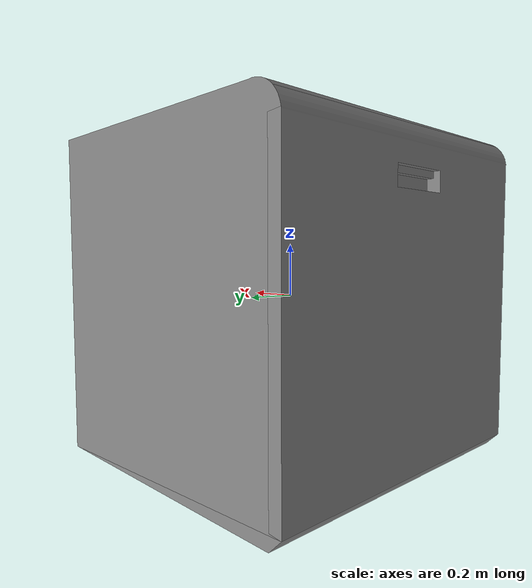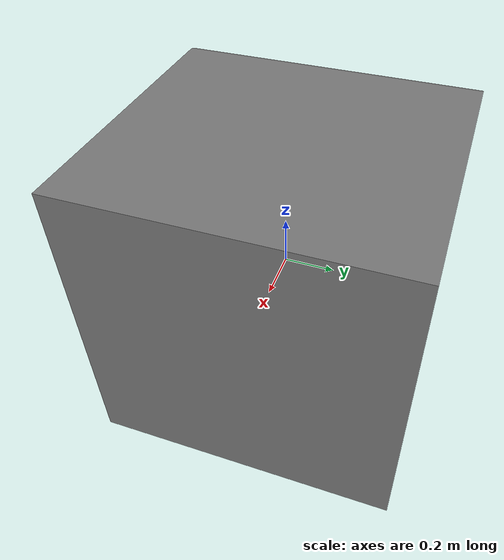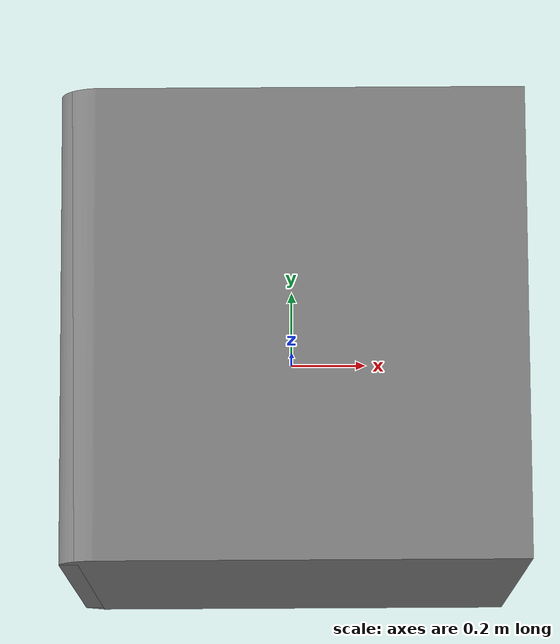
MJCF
<mujoco model="partnet_4e9832bbbb077f9c5c5adfeaec1397f">
    <compiler angle="radian" />
    <option gravity="0 0 0"/>
    <size njmax="500" nconmax="100" />
    <asset>
        <mesh name="new-0" file="new-0.stl" />
        <mesh name="new-3" file="new-3.stl" />
        <mesh name="new-2" file="new-2.stl" />
        <mesh name="new-1" file="new-1.stl" />
    </asset>
    <worldbody>
    <body>
        <body name="object">
        <geom quat="0.5 0.5 -0.5 -0.5" type="mesh" mesh="new-0" group="0" conaffinity="0" contype="0" />
        <geom quat="0.5 0.5 -0.5 -0.5" type="mesh" mesh="new-3" group="0" conaffinity="0" contype="0"/>
        <body name="link_0" pos="-0.531837 -0.599446 -0.559579" quat="0.5 0.5 -0.5 -0.5">
            <inertial pos="-0.601521 0.660954 0.0431004" quat="-0.00910051 0.707181 0.00989488 0.706905" mass="56.3931" diaginertia="13.505 9.07828 4.44272" />
            <joint name="joint_0" pos="0 0 0" axis="1 0 0" limited="true" range="0 1.5708" />
            <geom name="panel" pos="-0.599446 0.559579 -0.531837" type="mesh" mesh="new-2" group="0" />
            <geom pos="-0.599446 0.559579 -0.531837" type="mesh" mesh="new-1" group="0" />
        </body>
    </body>
            <site name="bottom_site" pos="0 0 -0.3" rgba="0 0 0 0" size="0.005"/>
            <site name="top_site" pos="0 0 0.3" rgba="0 0 0 0" size="0.005"/>
            <site name="horizontal_radius_site" pos="0.3 0 0" rgba="0 0 0 0" size="0.5"/>
    </body>
    </worldbody>
</mujoco>
